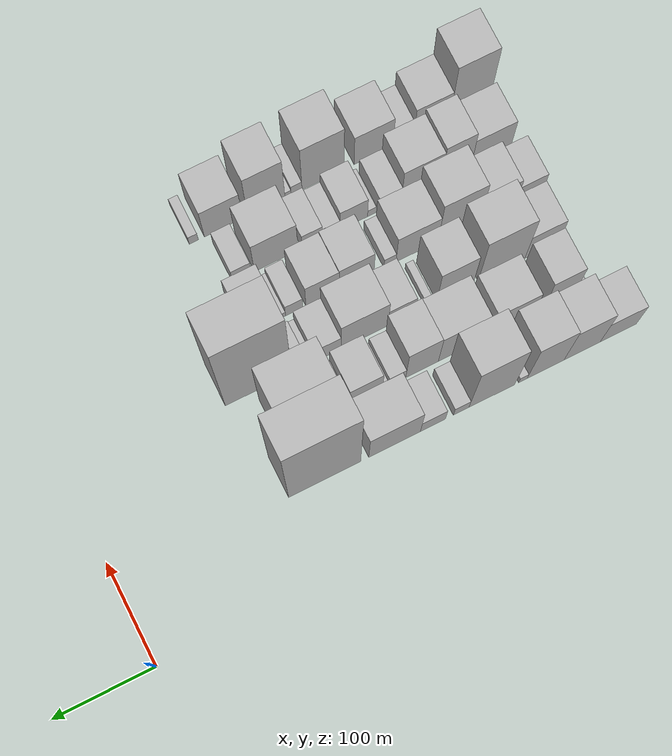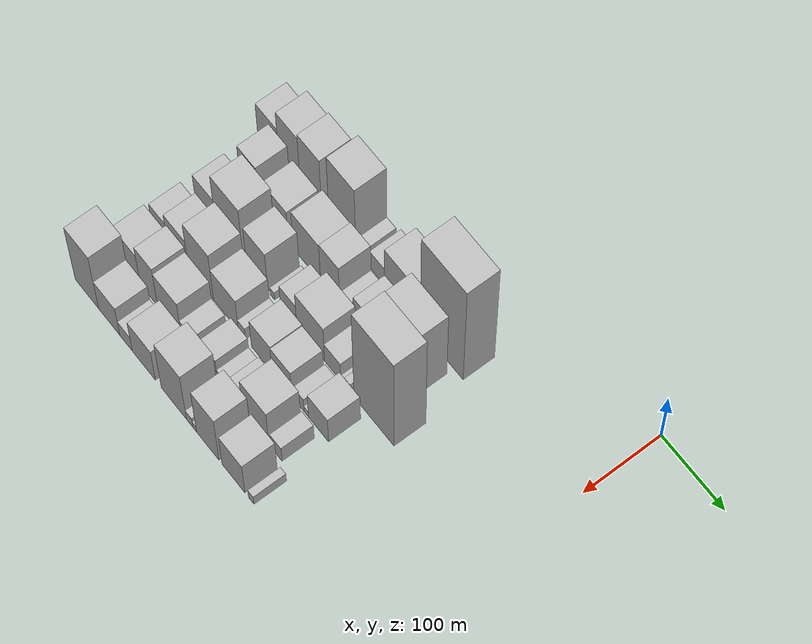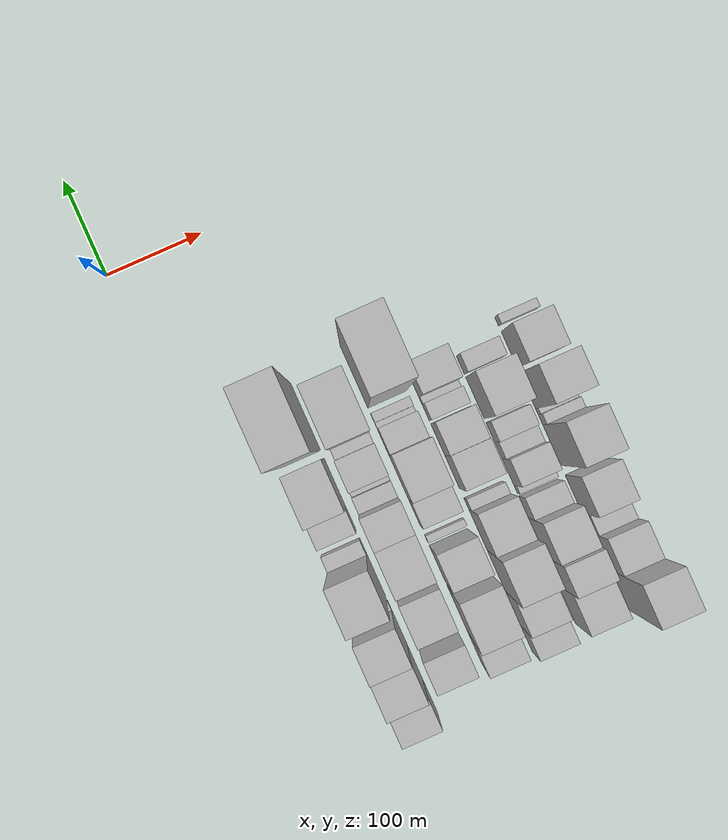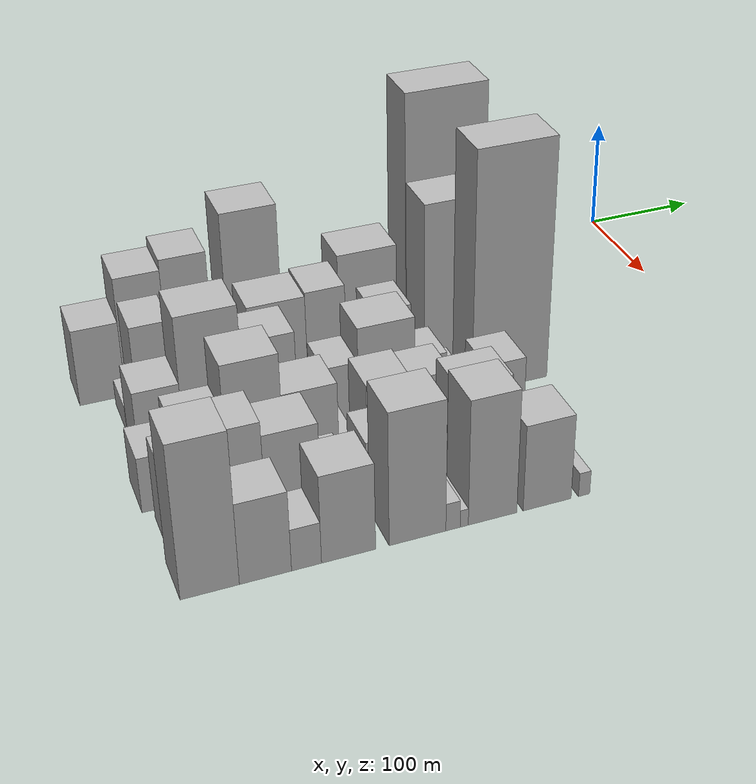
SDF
<sdf version="1.6">
 <world name="default">
  <model name="building_7">
   <static>1</static>
   <pose>100.0000 -494.5652 0 0.000000 0.000000 0.000000</pose>
   <link name="link">
    <pose>0 0 34.50 0 0 0</pose>
    <collision name="collision"><geometry><box><size>40.0000 36.5564 69.0000</size></box></geometry></collision>
    <visual name="visual">
     <cast_shadows>0</cast_shadows>
     <geometry><box><size>40.0000 36.5564 69.0000</size></box></geometry>
     <material>
      <script>
       <uri>model://HANNAS_wall/materials/scripts</uri>
       <uri>model://HANNAS_wall/materials/textures</uri>
       <name>vrc/HANNAS_wall</name>
      </script>
     </material>
    </visual>
   </link>
  </model>
  <model name="building_8">
   <static>1</static>
   <pose>100.0000 -458.0623 0 0.000000 0.000000 0.000000</pose>
   <link name="link">
    <pose>0 0 54.00 0 0 0</pose>
    <collision name="collision"><geometry><box><size>40.0000 36.4493 108.0000</size></box></geometry></collision>
    <visual name="visual">
     <cast_shadows>0</cast_shadows>
     <geometry><box><size>40.0000 36.4493 108.0000</size></box></geometry>
     <material>
      <script>
       <uri>model://HANNAS_wall/materials/scripts</uri>
       <uri>model://HANNAS_wall/materials/textures</uri>
       <name>vrc/HANNAS_wall</name>
      </script>
     </material>
    </visual>
   </link>
  </model>
  <model name="building_9">
   <static>1</static>
   <pose>100.0000 -421.3438 0 0.000000 0.000000 0.000000</pose>
   <link name="link">
    <pose>0 0 58.50 0 0 0</pose>
    <collision name="collision"><geometry><box><size>40.0000 36.9877 117.0000</size></box></geometry></collision>
    <visual name="visual">
     <cast_shadows>0</cast_shadows>
     <geometry><box><size>40.0000 36.9877 117.0000</size></box></geometry>
     <material>
      <script>
       <uri>model://HANNAS_wall/materials/scripts</uri>
       <uri>model://HANNAS_wall/materials/textures</uri>
       <name>vrc/HANNAS_wall</name>
      </script>
     </material>
    </visual>
   </link>
  </model>
  <model name="building_10">
   <static>1</static>
   <pose>100.0000 -398.6143 0 0.000000 0.000000 0.000000</pose>
   <link name="link">
    <pose>0 0 9.00 0 0 0</pose>
    <collision name="collision"><geometry><box><size>40.0000 8.4713 18.0000</size></box></geometry></collision>
    <visual name="visual">
     <cast_shadows>0</cast_shadows>
     <geometry><box><size>40.0000 8.4713 18.0000</size></box></geometry>
     <material>
      <script>
       <uri>model://HANNAS_wall/materials/scripts</uri>
       <uri>model://HANNAS_wall/materials/textures</uri>
       <name>vrc/HANNAS_wall</name>
      </script>
     </material>
    </visual>
   </link>
  </model>
  <model name="building_11">
   <static>1</static>
   <pose>100.0000 -367.5345 0 0.000000 0.000000 0.000000</pose>
   <link name="link">
    <pose>0 0 73.50 0 0 0</pose>
    <collision name="collision"><geometry><box><size>40.0000 45.6884 147.0000</size></box></geometry></collision>
    <visual name="visual">
     <cast_shadows>0</cast_shadows>
     <geometry><box><size>40.0000 45.6884 147.0000</size></box></geometry>
     <material>
      <script>
       <uri>model://HANNAS_wall/materials/scripts</uri>
       <uri>model://HANNAS_wall/materials/textures</uri>
       <name>vrc/HANNAS_wall</name>
      </script>
     </material>
    </visual>
   </link>
  </model>
  <model name="building_12">
   <static>1</static>
   <pose>100.0000 -336.9744 0 0.000000 0.000000 0.000000</pose>
   <link name="link">
    <pose>0 0 15.00 0 0 0</pose>
    <collision name="collision"><geometry><box><size>40.0000 15.4319 30.0000</size></box></geometry></collision>
    <visual name="visual">
     <cast_shadows>0</cast_shadows>
     <geometry><box><size>40.0000 15.4319 30.0000</size></box></geometry>
     <material>
      <script>
       <uri>model://HANNAS_wall/materials/scripts</uri>
       <uri>model://HANNAS_wall/materials/textures</uri>
       <name>vrc/HANNAS_wall</name>
      </script>
     </material>
    </visual>
   </link>
  </model>
  <model name="building_13">
   <static>1</static>
   <pose>100.0000 -308.8902 0 0.000000 0.000000 0.000000</pose>
   <link name="link">
    <pose>0 0 21.00 0 0 0</pose>
    <collision name="collision"><geometry><box><size>40.0000 24.7364 42.0000</size></box></geometry></collision>
    <visual name="visual">
     <cast_shadows>0</cast_shadows>
     <geometry><box><size>40.0000 24.7364 42.0000</size></box></geometry>
     <material>
      <script>
       <uri>model://HANNAS_wall/materials/scripts</uri>
       <uri>model://HANNAS_wall/materials/textures</uri>
       <name>vrc/HANNAS_wall</name>
      </script>
     </material>
    </visual>
   </link>
  </model>
  <model name="building_14">
   <static>1</static>
   <pose>100.0000 -271.0160 0 0.000000 0.000000 0.000000</pose>
   <link name="link">
    <pose>0 0 45.00 0 0 0</pose>
    <collision name="collision"><geometry><box><size>40.0000 51.0120 90.0000</size></box></geometry></collision>
    <visual name="visual">
     <cast_shadows>0</cast_shadows>
     <geometry><box><size>40.0000 51.0120 90.0000</size></box></geometry>
     <material>
      <script>
       <uri>model://HANNAS_wall/materials/scripts</uri>
       <uri>model://HANNAS_wall/materials/textures</uri>
       <name>vrc/HANNAS_wall</name>
      </script>
     </material>
    </visual>
   </link>
  </model>
  <model name="building_15">
   <static>1</static>
   <pose>100.0000 -202.2346 0 0.000000 0.000000 0.000000</pose>
   <link name="link">
    <pose>0 0 111.00 0 0 0</pose>
    <collision name="collision"><geometry><box><size>40.0000 70.5507 222.0000</size></box></geometry></collision>
    <visual name="visual">
     <cast_shadows>0</cast_shadows>
     <geometry><box><size>40.0000 70.5507 222.0000</size></box></geometry>
     <material>
      <script>
       <uri>model://HANNAS_wall/materials/scripts</uri>
       <uri>model://HANNAS_wall/materials/textures</uri>
       <name>vrc/HANNAS_wall</name>
      </script>
     </material>
    </visual>
   </link>
  </model>
  <model name="building_59">
   <static>1</static>
   <pose>149.0000 -481.1371 0 0.000000 0.000000 0.000000</pose>
   <link name="link">
    <pose>0 0 12.00 0 0 0</pose>
    <collision name="collision"><geometry><box><size>40.0000 10.0063 24.0000</size></box></geometry></collision>
    <visual name="visual">
     <cast_shadows>0</cast_shadows>
     <geometry><box><size>40.0000 10.0063 24.0000</size></box></geometry>
     <material>
      <script>
       <uri>model://HANNAS_wall/materials/scripts</uri>
       <uri>model://HANNAS_wall/materials/textures</uri>
       <name>vrc/HANNAS_wall</name>
      </script>
     </material>
    </visual>
   </link>
  </model>
  <model name="building_60">
   <static>1</static>
   <pose>149.0000 -460.5494 0 0.000000 0.000000 0.000000</pose>
   <link name="link">
    <pose>0 0 46.50 0 0 0</pose>
    <collision name="collision"><geometry><box><size>40.0000 31.1691 93.0000</size></box></geometry></collision>
    <visual name="visual">
     <cast_shadows>0</cast_shadows>
     <geometry><box><size>40.0000 31.1691 93.0000</size></box></geometry>
     <material>
      <script>
       <uri>model://HANNAS_wall/materials/scripts</uri>
       <uri>model://HANNAS_wall/materials/textures</uri>
       <name>vrc/HANNAS_wall</name>
      </script>
     </material>
    </visual>
   </link>
  </model>
  <model name="building_61">
   <static>1</static>
   <pose>149.0000 -414.9760 0 0.000000 0.000000 0.000000</pose>
   <link name="link">
    <pose>0 0 37.50 0 0 0</pose>
    <collision name="collision"><geometry><box><size>40.0000 41.9776 75.0000</size></box></geometry></collision>
    <visual name="visual">
     <cast_shadows>0</cast_shadows>
     <geometry><box><size>40.0000 41.9776 75.0000</size></box></geometry>
     <material>
      <script>
       <uri>model://HANNAS_wall/materials/scripts</uri>
       <uri>model://HANNAS_wall/materials/textures</uri>
       <name>vrc/HANNAS_wall</name>
      </script>
     </material>
    </visual>
   </link>
  </model>
  <model name="building_62">
   <static>1</static>
   <pose>149.0000 -362.7636 0 0.000000 0.000000 0.000000</pose>
   <link name="link">
    <pose>0 0 45.00 0 0 0</pose>
    <collision name="collision"><geometry><box><size>40.0000 46.4473 90.0000</size></box></geometry></collision>
    <visual name="visual">
     <cast_shadows>0</cast_shadows>
     <geometry><box><size>40.0000 46.4473 90.0000</size></box></geometry>
     <material>
      <script>
       <uri>model://HANNAS_wall/materials/scripts</uri>
       <uri>model://HANNAS_wall/materials/textures</uri>
       <name>vrc/HANNAS_wall</name>
      </script>
     </material>
    </visual>
   </link>
  </model>
  <model name="building_63">
   <static>1</static>
   <pose>149.0000 -323.2786 0 0.000000 0.000000 0.000000</pose>
   <link name="link">
    <pose>0 0 46.50 0 0 0</pose>
    <collision name="collision"><geometry><box><size>40.0000 32.5226 93.0000</size></box></geometry></collision>
    <visual name="visual">
     <cast_shadows>0</cast_shadows>
     <geometry><box><size>40.0000 32.5226 93.0000</size></box></geometry>
     <material>
      <script>
       <uri>model://HANNAS_wall/materials/scripts</uri>
       <uri>model://HANNAS_wall/materials/textures</uri>
       <name>vrc/HANNAS_wall</name>
      </script>
     </material>
    </visual>
   </link>
  </model>
  <model name="building_64">
   <static>1</static>
   <pose>149.0000 -298.6372 0 0.000000 0.000000 0.000000</pose>
   <link name="link">
    <pose>0 0 16.50 0 0 0</pose>
    <collision name="collision"><geometry><box><size>40.0000 16.7602 33.0000</size></box></geometry></collision>
    <visual name="visual">
     <cast_shadows>0</cast_shadows>
     <geometry><box><size>40.0000 16.7602 33.0000</size></box></geometry>
     <material>
      <script>
       <uri>model://HANNAS_wall/materials/scripts</uri>
       <uri>model://HANNAS_wall/materials/textures</uri>
       <name>vrc/HANNAS_wall</name>
      </script>
     </material>
    </visual>
   </link>
  </model>
  <model name="building_65">
   <static>1</static>
   <pose>149.0000 -287.0875 0 0.000000 0.000000 0.000000</pose>
   <link name="link">
    <pose>0 0 7.50 0 0 0</pose>
    <collision name="collision"><geometry><box><size>40.0000 6.3392 15.0000</size></box></geometry></collision>
    <visual name="visual">
     <cast_shadows>0</cast_shadows>
     <geometry><box><size>40.0000 6.3392 15.0000</size></box></geometry>
     <material>
      <script>
       <uri>model://HANNAS_wall/materials/scripts</uri>
       <uri>model://HANNAS_wall/materials/textures</uri>
       <name>vrc/HANNAS_wall</name>
      </script>
     </material>
    </visual>
   </link>
  </model>
  <model name="building_66">
   <static>1</static>
   <pose>149.0000 -267.8154 0 0.000000 0.000000 0.000000</pose>
   <link name="link">
    <pose>0 0 31.50 0 0 0</pose>
    <collision name="collision"><geometry><box><size>40.0000 32.2050 63.0000</size></box></geometry></collision>
    <visual name="visual">
     <cast_shadows>0</cast_shadows>
     <geometry><box><size>40.0000 32.2050 63.0000</size></box></geometry>
     <material>
      <script>
       <uri>model://HANNAS_wall/materials/scripts</uri>
       <uri>model://HANNAS_wall/materials/textures</uri>
       <name>vrc/HANNAS_wall</name>
      </script>
     </material>
    </visual>
   </link>
  </model>
  <model name="building_67">
   <static>1</static>
   <pose>149.0000 -246.0578 0 0.000000 0.000000 0.000000</pose>
   <link name="link">
    <pose>0 0 12.00 0 0 0</pose>
    <collision name="collision"><geometry><box><size>40.0000 11.3102 24.0000</size></box></geometry></collision>
    <visual name="visual">
     <cast_shadows>0</cast_shadows>
     <geometry><box><size>40.0000 11.3102 24.0000</size></box></geometry>
     <material>
      <script>
       <uri>model://HANNAS_wall/materials/scripts</uri>
       <uri>model://HANNAS_wall/materials/textures</uri>
       <name>vrc/HANNAS_wall</name>
      </script>
     </material>
    </visual>
   </link>
  </model>
  <model name="building_68">
   <static>1</static>
   <pose>149.0000 -211.2304 0 0.000000 0.000000 0.000000</pose>
   <link name="link">
    <pose>0 0 75.00 0 0 0</pose>
    <collision name="collision"><geometry><box><size>40.0000 58.3446 150.0000</size></box></geometry></collision>
    <visual name="visual">
     <cast_shadows>0</cast_shadows>
     <geometry><box><size>40.0000 58.3446 150.0000</size></box></geometry>
     <material>
      <script>
       <uri>model://HANNAS_wall/materials/scripts</uri>
       <uri>model://HANNAS_wall/materials/textures</uri>
       <name>vrc/HANNAS_wall</name>
      </script>
     </material>
    </visual>
   </link>
  </model>
  <model name="building_109">
   <static>1</static>
   <pose>198.0000 -469.6679 0 0.000000 0.000000 0.000000</pose>
   <link name="link">
    <pose>0 0 34.50 0 0 0</pose>
    <collision name="collision"><geometry><box><size>40.0000 34.9102 69.0000</size></box></geometry></collision>
    <visual name="visual">
     <cast_shadows>0</cast_shadows>
     <geometry><box><size>40.0000 34.9102 69.0000</size></box></geometry>
     <material>
      <script>
       <uri>model://HANNAS_wall/materials/scripts</uri>
       <uri>model://HANNAS_wall/materials/textures</uri>
       <name>vrc/HANNAS_wall</name>
      </script>
     </material>
    </visual>
   </link>
  </model>
  <model name="building_110">
   <static>1</static>
   <pose>198.0000 -428.5740 0 0.000000 0.000000 0.000000</pose>
   <link name="link">
    <pose>0 0 63.00 0 0 0</pose>
    <collision name="collision"><geometry><box><size>40.0000 47.2775 126.0000</size></box></geometry></collision>
    <visual name="visual">
     <cast_shadows>0</cast_shadows>
     <geometry><box><size>40.0000 47.2775 126.0000</size></box></geometry>
     <material>
      <script>
       <uri>model://HANNAS_wall/materials/scripts</uri>
       <uri>model://HANNAS_wall/materials/textures</uri>
       <name>vrc/HANNAS_wall</name>
      </script>
     </material>
    </visual>
   </link>
  </model>
  <model name="building_111">
   <static>1</static>
   <pose>198.0000 -381.6067 0 0.000000 0.000000 0.000000</pose>
   <link name="link">
    <pose>0 0 46.50 0 0 0</pose>
    <collision name="collision"><geometry><box><size>40.0000 36.6570 93.0000</size></box></geometry></collision>
    <visual name="visual">
     <cast_shadows>0</cast_shadows>
     <geometry><box><size>40.0000 36.6570 93.0000</size></box></geometry>
     <material>
      <script>
       <uri>model://HANNAS_wall/materials/scripts</uri>
       <uri>model://HANNAS_wall/materials/textures</uri>
       <name>vrc/HANNAS_wall</name>
      </script>
     </material>
    </visual>
   </link>
  </model>
  <model name="building_112">
   <static>1</static>
   <pose>198.0000 -355.5937 0 0.000000 0.000000 0.000000</pose>
   <link name="link">
    <pose>0 0 9.00 0 0 0</pose>
    <collision name="collision"><geometry><box><size>40.0000 7.3691 18.0000</size></box></geometry></collision>
    <visual name="visual">
     <cast_shadows>0</cast_shadows>
     <geometry><box><size>40.0000 7.3691 18.0000</size></box></geometry>
     <material>
      <script>
       <uri>model://HANNAS_wall/materials/scripts</uri>
       <uri>model://HANNAS_wall/materials/textures</uri>
       <name>vrc/HANNAS_wall</name>
      </script>
     </material>
    </visual>
   </link>
  </model>
  <model name="building_113">
   <static>1</static>
   <pose>198.0000 -328.1384 0 0.000000 0.000000 0.000000</pose>
   <link name="link">
    <pose>0 0 27.00 0 0 0</pose>
    <collision name="collision"><geometry><box><size>40.0000 27.5415 54.0000</size></box></geometry></collision>
    <visual name="visual">
     <cast_shadows>0</cast_shadows>
     <geometry><box><size>40.0000 27.5415 54.0000</size></box></geometry>
     <material>
      <script>
       <uri>model://HANNAS_wall/materials/scripts</uri>
       <uri>model://HANNAS_wall/materials/textures</uri>
       <name>vrc/HANNAS_wall</name>
      </script>
     </material>
    </visual>
   </link>
  </model>
  <model name="building_114">
   <static>1</static>
   <pose>198.0000 -291.0183 0 0.000000 0.000000 0.000000</pose>
   <link name="link">
    <pose>0 0 42.00 0 0 0</pose>
    <collision name="collision"><geometry><box><size>40.0000 46.6987 84.0000</size></box></geometry></collision>
    <visual name="visual">
     <cast_shadows>0</cast_shadows>
     <geometry><box><size>40.0000 46.6987 84.0000</size></box></geometry>
     <material>
      <script>
       <uri>model://HANNAS_wall/materials/scripts</uri>
       <uri>model://HANNAS_wall/materials/textures</uri>
       <name>vrc/HANNAS_wall</name>
      </script>
     </material>
    </visual>
   </link>
  </model>
  <model name="building_115">
   <static>1</static>
   <pose>198.0000 -254.2331 0 0.000000 0.000000 0.000000</pose>
   <link name="link">
    <pose>0 0 22.50 0 0 0</pose>
    <collision name="collision"><geometry><box><size>40.0000 26.8717 45.0000</size></box></geometry></collision>
    <visual name="visual">
     <cast_shadows>0</cast_shadows>
     <geometry><box><size>40.0000 26.8717 45.0000</size></box></geometry>
     <material>
      <script>
       <uri>model://HANNAS_wall/materials/scripts</uri>
       <uri>model://HANNAS_wall/materials/textures</uri>
       <name>vrc/HANNAS_wall</name>
      </script>
     </material>
    </visual>
   </link>
  </model>
  <model name="building_116">
   <static>1</static>
   <pose>198.0000 -237.7605 0 0.000000 0.000000 0.000000</pose>
   <link name="link">
    <pose>0 0 7.50 0 0 0</pose>
    <collision name="collision"><geometry><box><size>40.0000 6.0735 15.0000</size></box></geometry></collision>
    <visual name="visual">
     <cast_shadows>0</cast_shadows>
     <geometry><box><size>40.0000 6.0735 15.0000</size></box></geometry>
     <material>
      <script>
       <uri>model://HANNAS_wall/materials/scripts</uri>
       <uri>model://HANNAS_wall/materials/textures</uri>
       <name>vrc/HANNAS_wall</name>
      </script>
     </material>
    </visual>
   </link>
  </model>
  <model name="building_117">
   <static>1</static>
   <pose>198.0000 -229.8115 0 0.000000 0.000000 0.000000</pose>
   <link name="link">
    <pose>0 0 10.50 0 0 0</pose>
    <collision name="collision"><geometry><box><size>40.0000 9.8244 21.0000</size></box></geometry></collision>
    <visual name="visual">
     <cast_shadows>0</cast_shadows>
     <geometry><box><size>40.0000 9.8244 21.0000</size></box></geometry>
     <material>
      <script>
       <uri>model://HANNAS_wall/materials/scripts</uri>
       <uri>model://HANNAS_wall/materials/textures</uri>
       <name>vrc/HANNAS_wall</name>
      </script>
     </material>
    </visual>
   </link>
  </model>
  <model name="building_118">
   <static>1</static>
   <pose>198.0000 -186.0014 0 0.000000 0.000000 0.000000</pose>
   <link name="link">
    <pose>0 0 108.00 0 0 0</pose>
    <collision name="collision"><geometry><box><size>40.0000 65.7957 216.0000</size></box></geometry></collision>
    <visual name="visual">
     <cast_shadows>0</cast_shadows>
     <geometry><box><size>40.0000 65.7957 216.0000</size></box></geometry>
     <material>
      <script>
       <uri>model://HANNAS_wall/materials/scripts</uri>
       <uri>model://HANNAS_wall/materials/textures</uri>
       <name>vrc/HANNAS_wall</name>
      </script>
     </material>
    </visual>
   </link>
  </model>
  <model name="building_158">
   <static>1</static>
   <pose>247.0000 -483.1741 0 0.000000 0.000000 0.000000</pose>
   <link name="link">
    <pose>0 0 24.00 0 0 0</pose>
    <collision name="collision"><geometry><box><size>40.0000 27.3827 48.0000</size></box></geometry></collision>
    <visual name="visual">
     <cast_shadows>0</cast_shadows>
     <geometry><box><size>40.0000 27.3827 48.0000</size></box></geometry>
     <material>
      <script>
       <uri>model://HANNAS_wall/materials/scripts</uri>
       <uri>model://HANNAS_wall/materials/textures</uri>
       <name>vrc/HANNAS_wall</name>
      </script>
     </material>
    </visual>
   </link>
  </model>
  <model name="building_159">
   <static>1</static>
   <pose>247.0000 -451.0578 0 0.000000 0.000000 0.000000</pose>
   <link name="link">
    <pose>0 0 34.50 0 0 0</pose>
    <collision name="collision"><geometry><box><size>40.0000 36.8499 69.0000</size></box></geometry></collision>
    <visual name="visual">
     <cast_shadows>0</cast_shadows>
     <geometry><box><size>40.0000 36.8499 69.0000</size></box></geometry>
     <material>
      <script>
       <uri>model://HANNAS_wall/materials/scripts</uri>
       <uri>model://HANNAS_wall/materials/textures</uri>
       <name>vrc/HANNAS_wall</name>
      </script>
     </material>
    </visual>
   </link>
  </model>
  <model name="building_160">
   <static>1</static>
   <pose>247.0000 -411.1892 0 0.000000 0.000000 0.000000</pose>
   <link name="link">
    <pose>0 0 55.50 0 0 0</pose>
    <collision name="collision"><geometry><box><size>40.0000 42.8873 111.0000</size></box></geometry></collision>
    <visual name="visual">
     <cast_shadows>0</cast_shadows>
     <geometry><box><size>40.0000 42.8873 111.0000</size></box></geometry>
     <material>
      <script>
       <uri>model://HANNAS_wall/materials/scripts</uri>
       <uri>model://HANNAS_wall/materials/textures</uri>
       <name>vrc/HANNAS_wall</name>
      </script>
     </material>
    </visual>
   </link>
  </model>
  <model name="building_161">
   <static>1</static>
   <pose>247.0000 -368.5298 0 0.000000 0.000000 0.000000</pose>
   <link name="link">
    <pose>0 0 37.50 0 0 0</pose>
    <collision name="collision"><geometry><box><size>40.0000 42.4316 75.0000</size></box></geometry></collision>
    <visual name="visual">
     <cast_shadows>0</cast_shadows>
     <geometry><box><size>40.0000 42.4316 75.0000</size></box></geometry>
     <material>
      <script>
       <uri>model://HANNAS_wall/materials/scripts</uri>
       <uri>model://HANNAS_wall/materials/textures</uri>
       <name>vrc/HANNAS_wall</name>
      </script>
     </material>
    </visual>
   </link>
  </model>
  <model name="building_162">
   <static>1</static>
   <pose>247.0000 -341.2496 0 0.000000 0.000000 0.000000</pose>
   <link name="link">
    <pose>0 0 13.50 0 0 0</pose>
    <collision name="collision"><geometry><box><size>40.0000 12.1287 27.0000</size></box></geometry></collision>
    <visual name="visual">
     <cast_shadows>0</cast_shadows>
     <geometry><box><size>40.0000 12.1287 27.0000</size></box></geometry>
     <material>
      <script>
       <uri>model://HANNAS_wall/materials/scripts</uri>
       <uri>model://HANNAS_wall/materials/textures</uri>
       <name>vrc/HANNAS_wall</name>
      </script>
     </material>
    </visual>
   </link>
  </model>
  <model name="building_163">
   <static>1</static>
   <pose>247.0000 -307.7780 0 0.000000 0.000000 0.000000</pose>
   <link name="link">
    <pose>0 0 33.00 0 0 0</pose>
    <collision name="collision"><geometry><box><size>40.0000 34.8145 66.0000</size></box></geometry></collision>
    <visual name="visual">
     <cast_shadows>0</cast_shadows>
     <geometry><box><size>40.0000 34.8145 66.0000</size></box></geometry>
     <material>
      <script>
       <uri>model://HANNAS_wall/materials/scripts</uri>
       <uri>model://HANNAS_wall/materials/textures</uri>
       <name>vrc/HANNAS_wall</name>
      </script>
     </material>
    </visual>
   </link>
  </model>
  <model name="building_164">
   <static>1</static>
   <pose>247.0000 -273.7244 0 0.000000 0.000000 0.000000</pose>
   <link name="link">
    <pose>0 0 31.50 0 0 0</pose>
    <collision name="collision"><geometry><box><size>40.0000 33.2926 63.0000</size></box></geometry></collision>
    <visual name="visual">
     <cast_shadows>0</cast_shadows>
     <geometry><box><size>40.0000 33.2926 63.0000</size></box></geometry>
     <material>
      <script>
       <uri>model://HANNAS_wall/materials/scripts</uri>
       <uri>model://HANNAS_wall/materials/textures</uri>
       <name>vrc/HANNAS_wall</name>
      </script>
     </material>
    </visual>
   </link>
  </model>
  <model name="building_165">
   <static>1</static>
   <pose>247.0000 -245.4531 0 0.000000 0.000000 0.000000</pose>
   <link name="link">
    <pose>0 0 16.50 0 0 0</pose>
    <collision name="collision"><geometry><box><size>40.0000 17.2500 33.0000</size></box></geometry></collision>
    <visual name="visual">
     <cast_shadows>0</cast_shadows>
     <geometry><box><size>40.0000 17.2500 33.0000</size></box></geometry>
     <material>
      <script>
       <uri>model://HANNAS_wall/materials/scripts</uri>
       <uri>model://HANNAS_wall/materials/textures</uri>
       <name>vrc/HANNAS_wall</name>
      </script>
     </material>
    </visual>
   </link>
  </model>
  <model name="building_166">
   <static>1</static>
   <pose>247.0000 -233.1487 0 0.000000 0.000000 0.000000</pose>
   <link name="link">
    <pose>0 0 7.50 0 0 0</pose>
    <collision name="collision"><geometry><box><size>40.0000 7.3587 15.0000</size></box></geometry></collision>
    <visual name="visual">
     <cast_shadows>0</cast_shadows>
     <geometry><box><size>40.0000 7.3587 15.0000</size></box></geometry>
     <material>
      <script>
       <uri>model://HANNAS_wall/materials/scripts</uri>
       <uri>model://HANNAS_wall/materials/textures</uri>
       <name>vrc/HANNAS_wall</name>
      </script>
     </material>
    </visual>
   </link>
  </model>
  <model name="building_167">
   <static>1</static>
   <pose>247.0000 -212.8863 0 0.000000 0.000000 0.000000</pose>
   <link name="link">
    <pose>0 0 30.00 0 0 0</pose>
    <collision name="collision"><geometry><box><size>40.0000 33.1662 60.0000</size></box></geometry></collision>
    <visual name="visual">
     <cast_shadows>0</cast_shadows>
     <geometry><box><size>40.0000 33.1662 60.0000</size></box></geometry>
     <material>
      <script>
       <uri>model://HANNAS_wall/materials/scripts</uri>
       <uri>model://HANNAS_wall/materials/textures</uri>
       <name>vrc/HANNAS_wall</name>
      </script>
     </material>
    </visual>
   </link>
  </model>
  <model name="building_211">
   <static>1</static>
   <pose>296.0000 -468.9899 0 0.000000 0.000000 0.000000</pose>
   <link name="link">
    <pose>0 0 36.00 0 0 0</pose>
    <collision name="collision"><geometry><box><size>40.0000 40.6414 72.0000</size></box></geometry></collision>
    <visual name="visual">
     <cast_shadows>0</cast_shadows>
     <geometry><box><size>40.0000 40.6414 72.0000</size></box></geometry>
     <material>
      <script>
       <uri>model://HANNAS_wall/materials/scripts</uri>
       <uri>model://HANNAS_wall/materials/textures</uri>
       <name>vrc/HANNAS_wall</name>
      </script>
     </material>
    </visual>
   </link>
  </model>
  <model name="building_212">
   <static>1</static>
   <pose>296.0000 -433.6672 0 0.000000 0.000000 0.000000</pose>
   <link name="link">
    <pose>0 0 46.50 0 0 0</pose>
    <collision name="collision"><geometry><box><size>40.0000 30.0039 93.0000</size></box></geometry></collision>
    <visual name="visual">
     <cast_shadows>0</cast_shadows>
     <geometry><box><size>40.0000 30.0039 93.0000</size></box></geometry>
     <material>
      <script>
       <uri>model://HANNAS_wall/materials/scripts</uri>
       <uri>model://HANNAS_wall/materials/textures</uri>
       <name>vrc/HANNAS_wall</name>
      </script>
     </material>
    </visual>
   </link>
  </model>
  <model name="building_213">
   <static>1</static>
   <pose>296.0000 -398.2916 0 0.000000 0.000000 0.000000</pose>
   <link name="link">
    <pose>0 0 40.50 0 0 0</pose>
    <collision name="collision"><geometry><box><size>40.0000 40.7473 81.0000</size></box></geometry></collision>
    <visual name="visual">
     <cast_shadows>0</cast_shadows>
     <geometry><box><size>40.0000 40.7473 81.0000</size></box></geometry>
     <material>
      <script>
       <uri>model://HANNAS_wall/materials/scripts</uri>
       <uri>model://HANNAS_wall/materials/textures</uri>
       <name>vrc/HANNAS_wall</name>
      </script>
     </material>
    </visual>
   </link>
  </model>
  <model name="building_214">
   <static>1</static>
   <pose>296.0000 -366.5287 0 0.000000 0.000000 0.000000</pose>
   <link name="link">
    <pose>0 0 19.50 0 0 0</pose>
    <collision name="collision"><geometry><box><size>40.0000 22.7786 39.0000</size></box></geometry></collision>
    <visual name="visual">
     <cast_shadows>0</cast_shadows>
     <geometry><box><size>40.0000 22.7786 39.0000</size></box></geometry>
     <material>
      <script>
       <uri>model://HANNAS_wall/materials/scripts</uri>
       <uri>model://HANNAS_wall/materials/textures</uri>
       <name>vrc/HANNAS_wall</name>
      </script>
     </material>
    </visual>
   </link>
  </model>
  <model name="building_215">
   <static>1</static>
   <pose>296.0000 -347.8540 0 0.000000 0.000000 0.000000</pose>
   <link name="link">
    <pose>0 0 9.00 0 0 0</pose>
    <collision name="collision"><geometry><box><size>40.0000 8.5709 18.0000</size></box></geometry></collision>
    <visual name="visual">
     <cast_shadows>0</cast_shadows>
     <geometry><box><size>40.0000 8.5709 18.0000</size></box></geometry>
     <material>
      <script>
       <uri>model://HANNAS_wall/materials/scripts</uri>
       <uri>model://HANNAS_wall/materials/textures</uri>
       <name>vrc/HANNAS_wall</name>
      </script>
     </material>
    </visual>
   </link>
  </model>
  <model name="building_216">
   <static>1</static>
   <pose>296.0000 -329.7267 0 0.000000 0.000000 0.000000</pose>
   <link name="link">
    <pose>0 0 27.00 0 0 0</pose>
    <collision name="collision"><geometry><box><size>40.0000 27.6837 54.0000</size></box></geometry></collision>
    <visual name="visual">
     <cast_shadows>0</cast_shadows>
     <geometry><box><size>40.0000 27.6837 54.0000</size></box></geometry>
     <material>
      <script>
       <uri>model://HANNAS_wall/materials/scripts</uri>
       <uri>model://HANNAS_wall/materials/textures</uri>
       <name>vrc/HANNAS_wall</name>
      </script>
     </material>
    </visual>
   </link>
  </model>
  <model name="building_217">
   <static>1</static>
   <pose>296.0000 -307.1734 0 0.000000 0.000000 0.000000</pose>
   <link name="link">
    <pose>0 0 15.00 0 0 0</pose>
    <collision name="collision"><geometry><box><size>40.0000 17.4228 30.0000</size></box></geometry></collision>
    <visual name="visual">
     <cast_shadows>0</cast_shadows>
     <geometry><box><size>40.0000 17.4228 30.0000</size></box></geometry>
     <material>
      <script>
       <uri>model://HANNAS_wall/materials/scripts</uri>
       <uri>model://HANNAS_wall/materials/textures</uri>
       <name>vrc/HANNAS_wall</name>
      </script>
     </material>
    </visual>
   </link>
  </model>
  <model name="building_218">
   <static>1</static>
   <pose>296.0000 -288.0831 0 0.000000 0.000000 0.000000</pose>
   <link name="link">
    <pose>0 0 19.50 0 0 0</pose>
    <collision name="collision"><geometry><box><size>40.0000 20.7578 39.0000</size></box></geometry></collision>
    <visual name="visual">
     <cast_shadows>0</cast_shadows>
     <geometry><box><size>40.0000 20.7578 39.0000</size></box></geometry>
     <material>
      <script>
       <uri>model://HANNAS_wall/materials/scripts</uri>
       <uri>model://HANNAS_wall/materials/textures</uri>
       <name>vrc/HANNAS_wall</name>
      </script>
     </material>
    </visual>
   </link>
  </model>
  <model name="building_219">
   <static>1</static>
   <pose>296.0000 -251.8556 0 0.000000 0.000000 0.000000</pose>
   <link name="link">
    <pose>0 0 42.00 0 0 0</pose>
    <collision name="collision"><geometry><box><size>40.0000 43.6973 84.0000</size></box></geometry></collision>
    <visual name="visual">
     <cast_shadows>0</cast_shadows>
     <geometry><box><size>40.0000 43.6973 84.0000</size></box></geometry>
     <material>
      <script>
       <uri>model://HANNAS_wall/materials/scripts</uri>
       <uri>model://HANNAS_wall/materials/textures</uri>
       <name>vrc/HANNAS_wall</name>
      </script>
     </material>
    </visual>
   </link>
  </model>
  <model name="building_220">
   <static>1</static>
   <pose>296.0000 -217.5683 0 0.000000 0.000000 0.000000</pose>
   <link name="link">
    <pose>0 0 18.00 0 0 0</pose>
    <collision name="collision"><geometry><box><size>40.0000 18.8773 36.0000</size></box></geometry></collision>
    <visual name="visual">
     <cast_shadows>0</cast_shadows>
     <geometry><box><size>40.0000 18.8773 36.0000</size></box></geometry>
     <material>
      <script>
       <uri>model://HANNAS_wall/materials/scripts</uri>
       <uri>model://HANNAS_wall/materials/textures</uri>
       <name>vrc/HANNAS_wall</name>
      </script>
     </material>
    </visual>
   </link>
  </model>
  <model name="building_257">
   <static>1</static>
   <pose>345.0000 -473.0735 0 0.000000 0.000000 0.000000</pose>
   <link name="link">
    <pose>0 0 64.50 0 0 0</pose>
    <collision name="collision"><geometry><box><size>40.0000 40.9622 129.0000</size></box></geometry></collision>
    <visual name="visual">
     <cast_shadows>0</cast_shadows>
     <geometry><box><size>40.0000 40.9622 129.0000</size></box></geometry>
     <material>
      <script>
       <uri>model://HANNAS_wall/materials/scripts</uri>
       <uri>model://HANNAS_wall/materials/textures</uri>
       <name>vrc/HANNAS_wall</name>
      </script>
     </material>
    </visual>
   </link>
  </model>
  <model name="building_258">
   <static>1</static>
   <pose>345.0000 -434.1950 0 0.000000 0.000000 0.000000</pose>
   <link name="link">
    <pose>0 0 34.50 0 0 0</pose>
    <collision name="collision"><geometry><box><size>40.0000 36.7948 69.0000</size></box></geometry></collision>
    <visual name="visual">
     <cast_shadows>0</cast_shadows>
     <geometry><box><size>40.0000 36.7948 69.0000</size></box></geometry>
     <material>
      <script>
       <uri>model://HANNAS_wall/materials/scripts</uri>
       <uri>model://HANNAS_wall/materials/textures</uri>
       <name>vrc/HANNAS_wall</name>
      </script>
     </material>
    </visual>
   </link>
  </model>
  <model name="building_259">
   <static>1</static>
   <pose>345.0000 -405.0360 0 0.000000 0.000000 0.000000</pose>
   <link name="link">
    <pose>0 0 18.00 0 0 0</pose>
    <collision name="collision"><geometry><box><size>40.0000 21.5231 36.0000</size></box></geometry></collision>
    <visual name="visual">
     <cast_shadows>0</cast_shadows>
     <geometry><box><size>40.0000 21.5231 36.0000</size></box></geometry>
     <material>
      <script>
       <uri>model://HANNAS_wall/materials/scripts</uri>
       <uri>model://HANNAS_wall/materials/textures</uri>
       <name>vrc/HANNAS_wall</name>
      </script>
     </material>
    </visual>
   </link>
  </model>
  <model name="building_260">
   <static>1</static>
   <pose>345.0000 -374.4815 0 0.000000 0.000000 0.000000</pose>
   <link name="link">
    <pose>0 0 37.50 0 0 0</pose>
    <collision name="collision"><geometry><box><size>40.0000 39.5858 75.0000</size></box></geometry></collision>
    <visual name="visual">
     <cast_shadows>0</cast_shadows>
     <geometry><box><size>40.0000 39.5858 75.0000</size></box></geometry>
     <material>
      <script>
       <uri>model://HANNAS_wall/materials/scripts</uri>
       <uri>model://HANNAS_wall/materials/textures</uri>
       <name>vrc/HANNAS_wall</name>
      </script>
     </material>
    </visual>
   </link>
  </model>
  <model name="building_261">
   <static>1</static>
   <pose>345.0000 -323.3498 0 0.000000 0.000000 0.000000</pose>
   <link name="link">
    <pose>0 0 57.00 0 0 0</pose>
    <collision name="collision"><geometry><box><size>40.0000 42.6775 114.0000</size></box></geometry></collision>
    <visual name="visual">
     <cast_shadows>0</cast_shadows>
     <geometry><box><size>40.0000 42.6775 114.0000</size></box></geometry>
     <material>
      <script>
       <uri>model://HANNAS_wall/materials/scripts</uri>
       <uri>model://HANNAS_wall/materials/textures</uri>
       <name>vrc/HANNAS_wall</name>
      </script>
     </material>
    </visual>
   </link>
  </model>
  <model name="building_262">
   <static>1</static>
   <pose>345.0000 -296.5547 0 0.000000 0.000000 0.000000</pose>
   <link name="link">
    <pose>0 0 12.00 0 0 0</pose>
    <collision name="collision"><geometry><box><size>40.0000 10.9127 24.0000</size></box></geometry></collision>
    <visual name="visual">
     <cast_shadows>0</cast_shadows>
     <geometry><box><size>40.0000 10.9127 24.0000</size></box></geometry>
     <material>
      <script>
       <uri>model://HANNAS_wall/materials/scripts</uri>
       <uri>model://HANNAS_wall/materials/textures</uri>
       <name>vrc/HANNAS_wall</name>
      </script>
     </material>
    </visual>
   </link>
  </model>
  <model name="building_263">
   <static>1</static>
   <pose>345.0000 -287.9725 0 0.000000 0.000000 0.000000</pose>
   <link name="link">
    <pose>0 0 7.50 0 0 0</pose>
    <collision name="collision"><geometry><box><size>40.0000 6.2516 15.0000</size></box></geometry></collision>
    <visual name="visual">
     <cast_shadows>0</cast_shadows>
     <geometry><box><size>40.0000 6.2516 15.0000</size></box></geometry>
     <material>
      <script>
       <uri>model://HANNAS_wall/materials/scripts</uri>
       <uri>model://HANNAS_wall/materials/textures</uri>
       <name>vrc/HANNAS_wall</name>
      </script>
     </material>
    </visual>
   </link>
  </model>
  <model name="building_264">
   <static>1</static>
   <pose>345.0000 -265.9818 0 0.000000 0.000000 0.000000</pose>
   <link name="link">
    <pose>0 0 54.00 0 0 0</pose>
    <collision name="collision"><geometry><box><size>40.0000 37.7300 108.0000</size></box></geometry></collision>
    <visual name="visual">
     <cast_shadows>0</cast_shadows>
     <geometry><box><size>40.0000 37.7300 108.0000</size></box></geometry>
     <material>
      <script>
       <uri>model://HANNAS_wall/materials/scripts</uri>
       <uri>model://HANNAS_wall/materials/textures</uri>
       <name>vrc/HANNAS_wall</name>
      </script>
     </material>
    </visual>
   </link>
  </model>
  <model name="building_265">
   <static>1</static>
   <pose>345.0000 -223.0240 0 0.000000 0.000000 0.000000</pose>
   <link name="link">
    <pose>0 0 37.50 0 0 0</pose>
    <collision name="collision"><geometry><box><size>40.0000 38.1856 75.0000</size></box></geometry></collision>
    <visual name="visual">
     <cast_shadows>0</cast_shadows>
     <geometry><box><size>40.0000 38.1856 75.0000</size></box></geometry>
     <material>
      <script>
       <uri>model://HANNAS_wall/materials/scripts</uri>
       <uri>model://HANNAS_wall/materials/textures</uri>
       <name>vrc/HANNAS_wall</name>
      </script>
     </material>
    </visual>
   </link>
  </model>
  <model name="building_266">
   <static>1</static>
   <pose>345.0000 -193.3736 0 0.000000 0.000000 0.000000</pose>
   <link name="link">
    <pose>0 0 10.50 0 0 0</pose>
    <collision name="collision"><geometry><box><size>40.0000 9.1152 21.0000</size></box></geometry></collision>
    <visual name="visual">
     <cast_shadows>0</cast_shadows>
     <geometry><box><size>40.0000 9.1152 21.0000</size></box></geometry>
     <material>
      <script>
       <uri>model://HANNAS_wall/materials/scripts</uri>
       <uri>model://HANNAS_wall/materials/textures</uri>
       <name>vrc/HANNAS_wall</name>
      </script>
     </material>
    </visual>
   </link>
  </model>
 </world>
</sdf>
